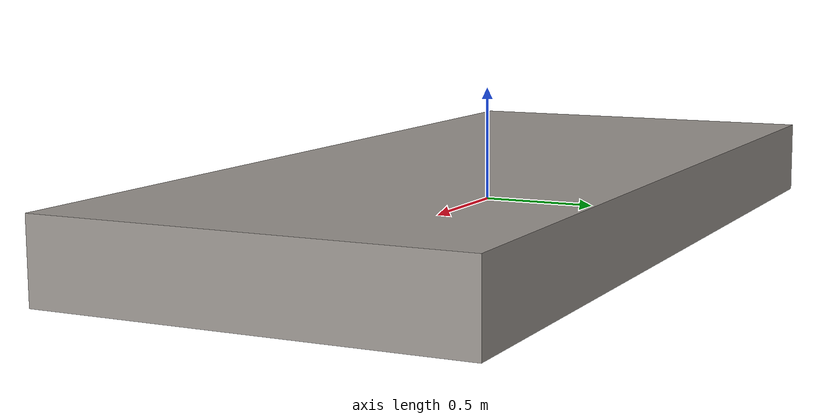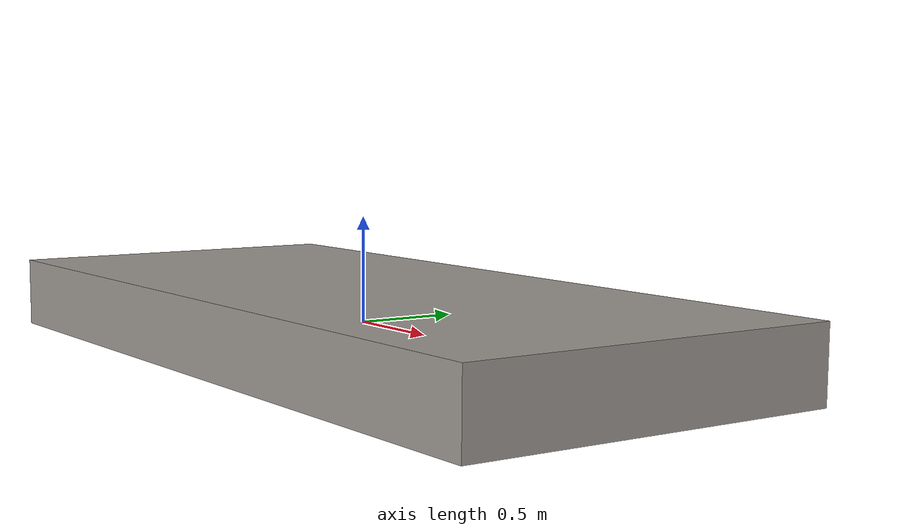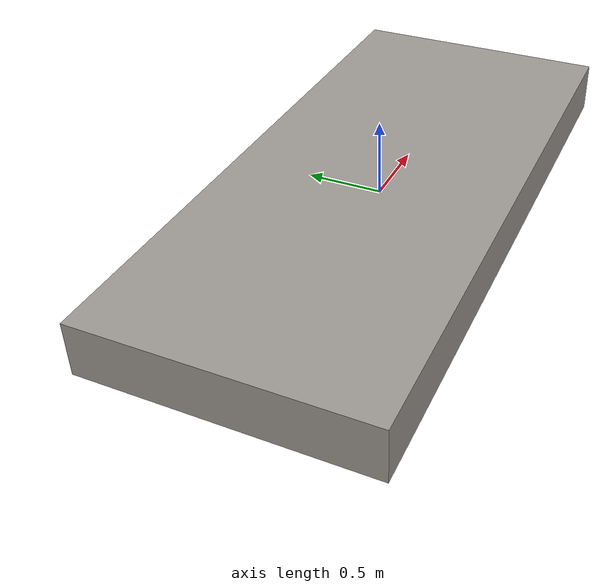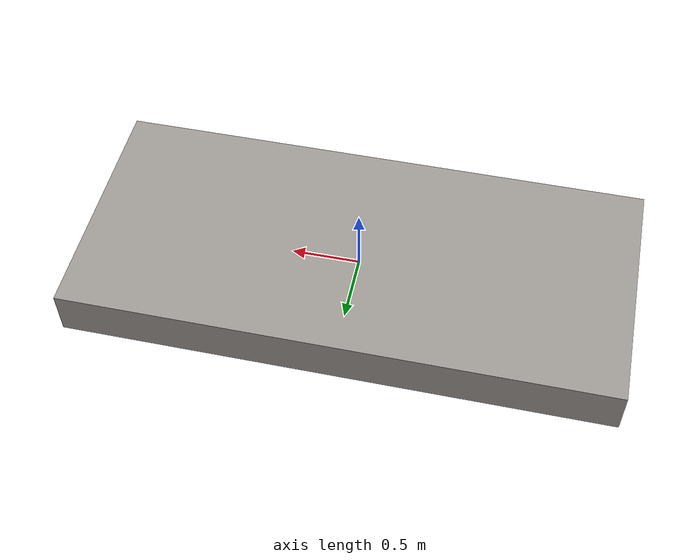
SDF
<?xml version="1.0"?>
<sdf version="1.6">
  <model name="clinic_ramp">
    <static>true</static>
    <link name="link">
      <collision name="col">
        <geometry>
          <box>
            <size>4.0 1.8 0.35</size>
          </box>
        </geometry>
      </collision>
      <visual name="vis">
        <geometry>
          <box>
            <size>4.0 1.8 0.35</size>
          </box>
        </geometry>
        <material>
          <ambient>0.62 0.6 0.58 1</ambient>
          <diffuse>0.62 0.6 0.58 1</diffuse>
        </material>
      </visual>
    </link>
  </model>
</sdf>
